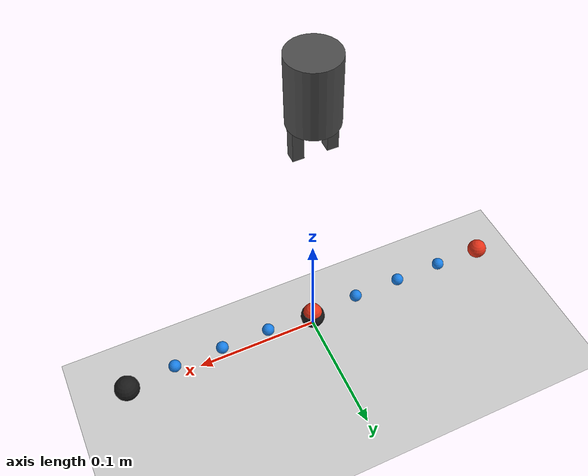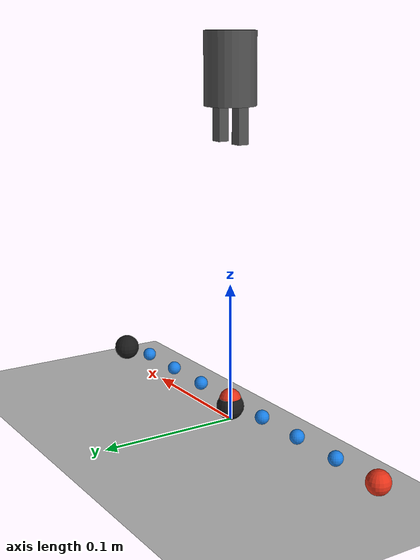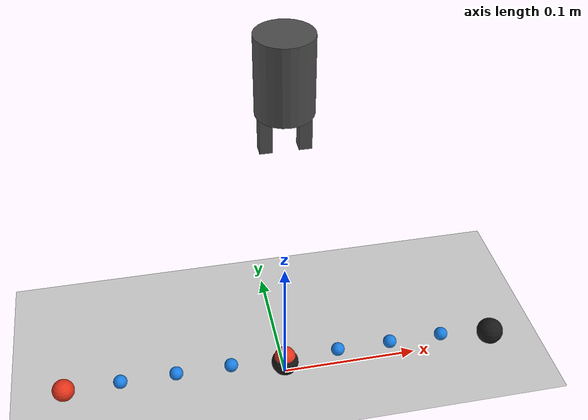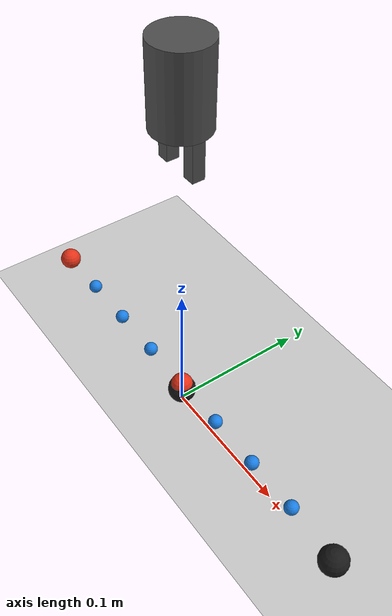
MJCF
<mujoco model="ur5_cable_routing">
  <option timestep="0.004" gravity="0 0 -9.81" integrator="Euler"
         solver="CG" iterations="8" tolerance="1e-8">
    <flag contact="enable" warmstart="enable"/>
  </option>
  <default>
    <geom condim="4" friction="0.8 0.01 0.001"/>
  </default>
  <asset>
    <texture name="texplane" type="2d" builtin="checker" width="512" height="512"
             rgb1="0.85 0.85 0.85" rgb2="0.75 0.75 0.75"/>
    <material name="matplane" texture="texplane" texrepeat="8 8" reflectance="0.1"/>
    <material name="cable" rgba="0.1 0.5 0.9 1"/>
    <material name="gripper_mat" rgba="0.3 0.3 0.3 1"/>
    <material name="bead" rgba="0.9 0.2 0.1 1"/>
    <material name="pin" rgba="0.1 0.1 0.1 1"/>
  </asset>

  <worldbody>
    <geom name="floor" type="plane" size="0.5 0.5 0.01" pos="0 0 -0.005"
          material="matplane"/>

    <!-- gripper (free body) -->
    <body name="gripper" pos="0 0 0.25">
      <freejoint name="gripper_joint"/>
      <geom name="gripper_body" type="cylinder" size="0.018 0.025"
            material="gripper_mat"/>
      <geom name="lf" type="box" size="0.004 0.004 0.015" pos="-0.012 0 -0.035"
            material="gripper_mat"/>
      <geom name="rf" type="box" size="0.004 0.004 0.015" pos="0.012 0 -0.035"
            material="gripper_mat"/>
    </body>

    <!-- left pin (static) -->
    <body name="pin_L" pos="0 0 0.01" mocap="true">
      <geom type="sphere" size="0.01" material="pin" contype="0"/>
    </body>

    <!-- cable beads -->
    <body name="bead_0" pos="-0.16000 0 0.015">
      <freejoint name="bead_j_0"/>
      <geom name="bead_g_0" type="sphere" size="0.0080" material="bead"/>
    </body>
    <body name="bead_1" pos="-0.12000 0 0.015">
      <freejoint name="bead_j_1"/>
      <geom name="bead_g_1" type="sphere" size="0.0050" material="cable"/>
    </body>
    <body name="bead_2" pos="-0.08000 0 0.015">
      <freejoint name="bead_j_2"/>
      <geom name="bead_g_2" type="sphere" size="0.0050" material="cable"/>
    </body>
    <body name="bead_3" pos="-0.04000 0 0.015">
      <freejoint name="bead_j_3"/>
      <geom name="bead_g_3" type="sphere" size="0.0050" material="cable"/>
    </body>
    <body name="bead_4" pos="0.00000 0 0.015">
      <freejoint name="bead_j_4"/>
      <geom name="bead_g_4" type="sphere" size="0.0080" material="bead"/>
    </body>
    <body name="bead_5" pos="0.04000 0 0.015">
      <freejoint name="bead_j_5"/>
      <geom name="bead_g_5" type="sphere" size="0.0050" material="cable"/>
    </body>
    <body name="bead_6" pos="0.08000 0 0.015">
      <freejoint name="bead_j_6"/>
      <geom name="bead_g_6" type="sphere" size="0.0050" material="cable"/>
    </body>
    <body name="bead_7" pos="0.12000 0 0.015">
      <freejoint name="bead_j_7"/>
      <geom name="bead_g_7" type="sphere" size="0.0050" material="cable"/>
    </body>
    <body name="pin_R" pos="0.16000 0 0.01" mocap="true">
      <geom type="sphere" size="0.01" material="pin" contype="0"/>
    </body>
  </worldbody>
</mujoco>
